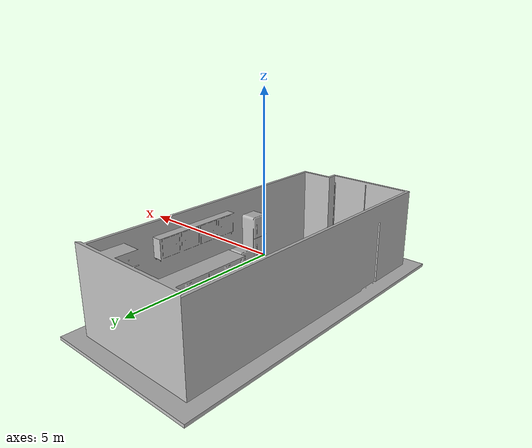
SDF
<?xml version='1.0'?>
<sdf version='1.6'>
  <model name='room912'>
    <static>true</static>
    <pose>0 0 0 1.57 0 0</pose>
    <link name='room912'>
      <collision name='collision'>
        <geometry>
          <mesh>
            <uri>model://room912/meshes/room912.stl</uri>
          </mesh>
        </geometry>
      </collision>

      <visual name='visual'>
        <geometry>
          <mesh>
            <uri>model://room912/meshes/room912.stl</uri>
          </mesh>
        </geometry>
      </visual>
    </link>
  </model>
</sdf>
